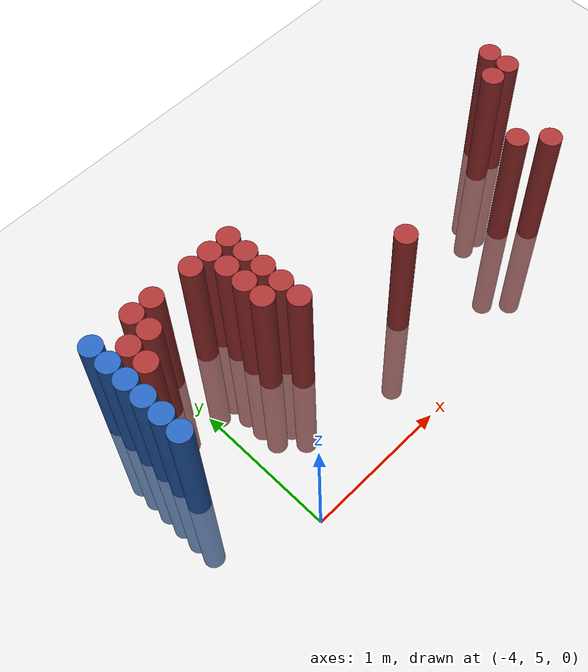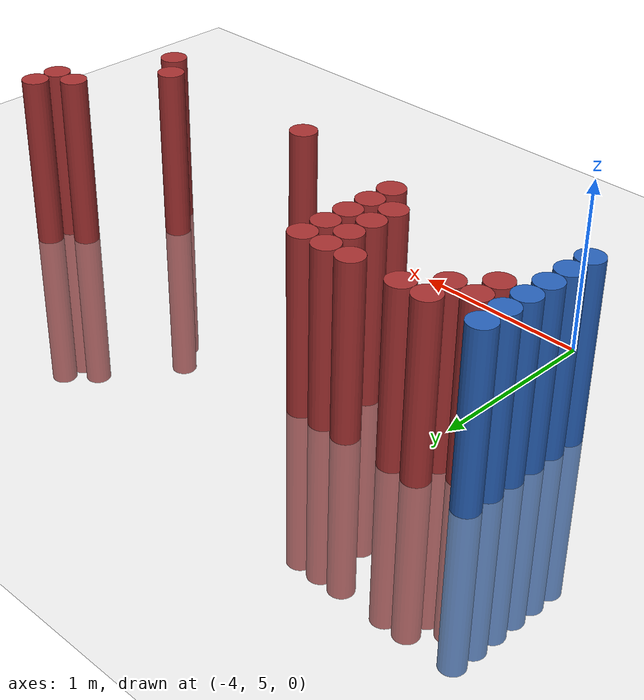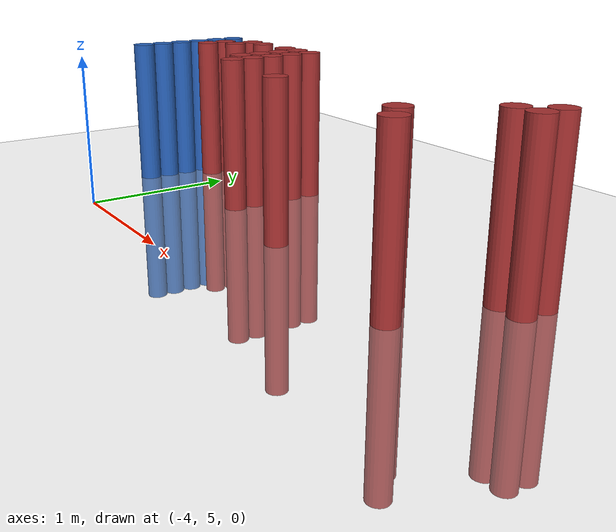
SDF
<sdf version="1.6">
 <world name="default">
  <model name="ground_plane">
   <static>1</static>
   <link name="link">
    <collision name="collision">
     <geometry><plane><normal>0 0 1</normal><size>100 100</size></plane></geometry>
     <surface><friction><ode><mu>100</mu><mu2>50</mu2></ode></friction></surface>
    </collision>
    <visual name="visual">
     <cast_shadows>0</cast_shadows>
     <geometry><plane><normal>0 0 1</normal><size>100 100</size></plane></geometry>
     <material>
      <script><uri>file://media/materials/scripts/gazebo.material</uri><name>Gazebo/Grey</name></script>
     </material>
    </visual>
   </link>
  </model>
  <model name="unit_cylinder_99">
   <static>1</static>
   <pose>-4.425000 5.625000 0.000000 0.000000 0.000000 0.000000</pose>
   <link name="link">
    <inertial>
     <mass>1</mass>
     <inertia><ixx>0.145833</ixx><ixy>0</ixy><ixz>0</ixz><iyy>0.145833</iyy><iyz>0</iyz><izz>0.125</izz></inertia>
    </inertial>
    <collision name="collision">
     <geometry><cylinder><radius>0.075000</radius><length>2</length></cylinder></geometry>
    </collision>
    <visual name="visual">
     <geometry><cylinder><radius>0.075000</radius><length>2</length></cylinder></geometry>
     <material>
      <ambient>0.152000 0.379000 0.720000 1</ambient>
      <diffuse>0.152000 0.379000 0.720000 1</diffuse>
     </material>
     <material>
      <script><name>Gazebo/Grey</name><uri>file://media/materials/scripts/gazebo.material</uri></script>
     </material>
    </visual>
   </link>
  </model>
  <model name="unit_cylinder_100">
   <static>1</static>
   <pose>-4.425000 5.775000 0.000000 0.000000 0.000000 0.000000</pose>
   <link name="link">
    <inertial>
     <mass>1</mass>
     <inertia><ixx>0.145833</ixx><ixy>0</ixy><ixz>0</ixz><iyy>0.145833</iyy><iyz>0</iyz><izz>0.125</izz></inertia>
    </inertial>
    <collision name="collision">
     <geometry><cylinder><radius>0.075000</radius><length>2</length></cylinder></geometry>
    </collision>
    <visual name="visual">
     <geometry><cylinder><radius>0.075000</radius><length>2</length></cylinder></geometry>
     <material>
      <ambient>0.152000 0.379000 0.720000 1</ambient>
      <diffuse>0.152000 0.379000 0.720000 1</diffuse>
     </material>
     <material>
      <script><name>Gazebo/Grey</name><uri>file://media/materials/scripts/gazebo.material</uri></script>
     </material>
    </visual>
   </link>
  </model>
  <model name="unit_cylinder_101">
   <static>1</static>
   <pose>-4.425000 5.925000 0.000000 0.000000 0.000000 0.000000</pose>
   <link name="link">
    <inertial>
     <mass>1</mass>
     <inertia><ixx>0.145833</ixx><ixy>0</ixy><ixz>0</ixz><iyy>0.145833</iyy><iyz>0</iyz><izz>0.125</izz></inertia>
    </inertial>
    <collision name="collision">
     <geometry><cylinder><radius>0.075000</radius><length>2</length></cylinder></geometry>
    </collision>
    <visual name="visual">
     <geometry><cylinder><radius>0.075000</radius><length>2</length></cylinder></geometry>
     <material>
      <ambient>0.152000 0.379000 0.720000 1</ambient>
      <diffuse>0.152000 0.379000 0.720000 1</diffuse>
     </material>
     <material>
      <script><name>Gazebo/Grey</name><uri>file://media/materials/scripts/gazebo.material</uri></script>
     </material>
    </visual>
   </link>
  </model>
  <model name="unit_cylinder_102">
   <static>1</static>
   <pose>-4.425000 6.075000 0.000000 0.000000 0.000000 0.000000</pose>
   <link name="link">
    <inertial>
     <mass>1</mass>
     <inertia><ixx>0.145833</ixx><ixy>0</ixy><ixz>0</ixz><iyy>0.145833</iyy><iyz>0</iyz><izz>0.125</izz></inertia>
    </inertial>
    <collision name="collision">
     <geometry><cylinder><radius>0.075000</radius><length>2</length></cylinder></geometry>
    </collision>
    <visual name="visual">
     <geometry><cylinder><radius>0.075000</radius><length>2</length></cylinder></geometry>
     <material>
      <ambient>0.152000 0.379000 0.720000 1</ambient>
      <diffuse>0.152000 0.379000 0.720000 1</diffuse>
     </material>
     <material>
      <script><name>Gazebo/Grey</name><uri>file://media/materials/scripts/gazebo.material</uri></script>
     </material>
    </visual>
   </link>
  </model>
  <model name="unit_cylinder_103">
   <static>1</static>
   <pose>-4.425000 6.225000 0.000000 0.000000 0.000000 0.000000</pose>
   <link name="link">
    <inertial>
     <mass>1</mass>
     <inertia><ixx>0.145833</ixx><ixy>0</ixy><ixz>0</ixz><iyy>0.145833</iyy><iyz>0</iyz><izz>0.125</izz></inertia>
    </inertial>
    <collision name="collision">
     <geometry><cylinder><radius>0.075000</radius><length>2</length></cylinder></geometry>
    </collision>
    <visual name="visual">
     <geometry><cylinder><radius>0.075000</radius><length>2</length></cylinder></geometry>
     <material>
      <ambient>0.152000 0.379000 0.720000 1</ambient>
      <diffuse>0.152000 0.379000 0.720000 1</diffuse>
     </material>
     <material>
      <script><name>Gazebo/Grey</name><uri>file://media/materials/scripts/gazebo.material</uri></script>
     </material>
    </visual>
   </link>
  </model>
  <model name="unit_cylinder_104">
   <static>1</static>
   <pose>-4.425000 6.375000 0.000000 0.000000 0.000000 0.000000</pose>
   <link name="link">
    <inertial>
     <mass>1</mass>
     <inertia><ixx>0.145833</ixx><ixy>0</ixy><ixz>0</ixz><iyy>0.145833</iyy><iyz>0</iyz><izz>0.125</izz></inertia>
    </inertial>
    <collision name="collision">
     <geometry><cylinder><radius>0.075000</radius><length>2</length></cylinder></geometry>
    </collision>
    <visual name="visual">
     <geometry><cylinder><radius>0.075000</radius><length>2</length></cylinder></geometry>
     <material>
      <ambient>0.152000 0.379000 0.720000 1</ambient>
      <diffuse>0.152000 0.379000 0.720000 1</diffuse>
     </material>
     <material>
      <script><name>Gazebo/Grey</name><uri>file://media/materials/scripts/gazebo.material</uri></script>
     </material>
    </visual>
   </link>
  </model>
  <model name="unit_cylinder_126">
   <static>1</static>
   <pose>-4.275000 6.075000 0.000000 0.000000 0.000000 0.000000</pose>
   <link name="link">
    <inertial>
     <mass>1</mass>
     <inertia><ixx>0.145833</ixx><ixy>0</ixy><ixz>0</ixz><iyy>0.145833</iyy><iyz>0</iyz><izz>0.125</izz></inertia>
    </inertial>
    <collision name="collision">
     <geometry><cylinder><radius>0.075000</radius><length>2</length></cylinder></geometry>
    </collision>
    <visual name="visual">
     <geometry><cylinder><radius>0.075000</radius><length>2</length></cylinder></geometry>
     <material>
      <ambient>0.648000 0.192000 0.192000 1</ambient>
      <diffuse>0.648000 0.192000 0.192000 1</diffuse>
     </material>
     <material>
      <script><name>Gazebo/Grey</name><uri>file://media/materials/scripts/gazebo.material</uri></script>
     </material>
    </visual>
   </link>
  </model>
  <model name="unit_cylinder_127">
   <static>1</static>
   <pose>-4.275000 6.225000 0.000000 0.000000 0.000000 0.000000</pose>
   <link name="link">
    <inertial>
     <mass>1</mass>
     <inertia><ixx>0.145833</ixx><ixy>0</ixy><ixz>0</ixz><iyy>0.145833</iyy><iyz>0</iyz><izz>0.125</izz></inertia>
    </inertial>
    <collision name="collision">
     <geometry><cylinder><radius>0.075000</radius><length>2</length></cylinder></geometry>
    </collision>
    <visual name="visual">
     <geometry><cylinder><radius>0.075000</radius><length>2</length></cylinder></geometry>
     <material>
      <ambient>0.648000 0.192000 0.192000 1</ambient>
      <diffuse>0.648000 0.192000 0.192000 1</diffuse>
     </material>
     <material>
      <script><name>Gazebo/Grey</name><uri>file://media/materials/scripts/gazebo.material</uri></script>
     </material>
    </visual>
   </link>
  </model>
  <model name="unit_cylinder_144">
   <static>1</static>
   <pose>-4.125000 6.225000 0.000000 0.000000 0.000000 0.000000</pose>
   <link name="link">
    <inertial>
     <mass>1</mass>
     <inertia><ixx>0.145833</ixx><ixy>0</ixy><ixz>0</ixz><iyy>0.145833</iyy><iyz>0</iyz><izz>0.125</izz></inertia>
    </inertial>
    <collision name="collision">
     <geometry><cylinder><radius>0.075000</radius><length>2</length></cylinder></geometry>
    </collision>
    <visual name="visual">
     <geometry><cylinder><radius>0.075000</radius><length>2</length></cylinder></geometry>
     <material>
      <ambient>0.648000 0.192000 0.192000 1</ambient>
      <diffuse>0.648000 0.192000 0.192000 1</diffuse>
     </material>
     <material>
      <script><name>Gazebo/Grey</name><uri>file://media/materials/scripts/gazebo.material</uri></script>
     </material>
    </visual>
   </link>
  </model>
  <model name="unit_cylinder_145">
   <static>1</static>
   <pose>-4.125000 6.375000 0.000000 0.000000 0.000000 0.000000</pose>
   <link name="link">
    <inertial>
     <mass>1</mass>
     <inertia><ixx>0.145833</ixx><ixy>0</ixy><ixz>0</ixz><iyy>0.145833</iyy><iyz>0</iyz><izz>0.125</izz></inertia>
    </inertial>
    <collision name="collision">
     <geometry><cylinder><radius>0.075000</radius><length>2</length></cylinder></geometry>
    </collision>
    <visual name="visual">
     <geometry><cylinder><radius>0.075000</radius><length>2</length></cylinder></geometry>
     <material>
      <ambient>0.648000 0.192000 0.192000 1</ambient>
      <diffuse>0.648000 0.192000 0.192000 1</diffuse>
     </material>
     <material>
      <script><name>Gazebo/Grey</name><uri>file://media/materials/scripts/gazebo.material</uri></script>
     </material>
    </visual>
   </link>
  </model>
  <model name="unit_cylinder_153">
   <static>1</static>
   <pose>-3.975000 6.375000 0.000000 0.000000 0.000000 0.000000</pose>
   <link name="link">
    <inertial>
     <mass>1</mass>
     <inertia><ixx>0.145833</ixx><ixy>0</ixy><ixz>0</ixz><iyy>0.145833</iyy><iyz>0</iyz><izz>0.125</izz></inertia>
    </inertial>
    <collision name="collision">
     <geometry><cylinder><radius>0.075000</radius><length>2</length></cylinder></geometry>
    </collision>
    <visual name="visual">
     <geometry><cylinder><radius>0.075000</radius><length>2</length></cylinder></geometry>
     <material>
      <ambient>0.648000 0.192000 0.192000 1</ambient>
      <diffuse>0.648000 0.192000 0.192000 1</diffuse>
     </material>
     <material>
      <script><name>Gazebo/Grey</name><uri>file://media/materials/scripts/gazebo.material</uri></script>
     </material>
    </visual>
   </link>
  </model>
  <model name="unit_cylinder_164">
   <static>1</static>
   <pose>-3.675000 6.375000 0.000000 0.000000 0.000000 0.000000</pose>
   <link name="link">
    <inertial>
     <mass>1</mass>
     <inertia><ixx>0.145833</ixx><ixy>0</ixy><ixz>0</ixz><iyy>0.145833</iyy><iyz>0</iyz><izz>0.125</izz></inertia>
    </inertial>
    <collision name="collision">
     <geometry><cylinder><radius>0.075000</radius><length>2</length></cylinder></geometry>
    </collision>
    <visual name="visual">
     <geometry><cylinder><radius>0.075000</radius><length>2</length></cylinder></geometry>
     <material>
      <ambient>0.648000 0.192000 0.192000 1</ambient>
      <diffuse>0.648000 0.192000 0.192000 1</diffuse>
     </material>
     <material>
      <script><name>Gazebo/Grey</name><uri>file://media/materials/scripts/gazebo.material</uri></script>
     </material>
    </visual>
   </link>
  </model>
  <model name="unit_cylinder_167">
   <static>1</static>
   <pose>-3.525000 5.925000 0.000000 0.000000 0.000000 0.000000</pose>
   <link name="link">
    <inertial>
     <mass>1</mass>
     <inertia><ixx>0.145833</ixx><ixy>0</ixy><ixz>0</ixz><iyy>0.145833</iyy><iyz>0</iyz><izz>0.125</izz></inertia>
    </inertial>
    <collision name="collision">
     <geometry><cylinder><radius>0.075000</radius><length>2</length></cylinder></geometry>
    </collision>
    <visual name="visual">
     <geometry><cylinder><radius>0.075000</radius><length>2</length></cylinder></geometry>
     <material>
      <ambient>0.648000 0.192000 0.192000 1</ambient>
      <diffuse>0.648000 0.192000 0.192000 1</diffuse>
     </material>
     <material>
      <script><name>Gazebo/Grey</name><uri>file://media/materials/scripts/gazebo.material</uri></script>
     </material>
    </visual>
   </link>
  </model>
  <model name="unit_cylinder_168">
   <static>1</static>
   <pose>-3.525000 6.075000 0.000000 0.000000 0.000000 0.000000</pose>
   <link name="link">
    <inertial>
     <mass>1</mass>
     <inertia><ixx>0.145833</ixx><ixy>0</ixy><ixz>0</ixz><iyy>0.145833</iyy><iyz>0</iyz><izz>0.125</izz></inertia>
    </inertial>
    <collision name="collision">
     <geometry><cylinder><radius>0.075000</radius><length>2</length></cylinder></geometry>
    </collision>
    <visual name="visual">
     <geometry><cylinder><radius>0.075000</radius><length>2</length></cylinder></geometry>
     <material>
      <ambient>0.648000 0.192000 0.192000 1</ambient>
      <diffuse>0.648000 0.192000 0.192000 1</diffuse>
     </material>
     <material>
      <script><name>Gazebo/Grey</name><uri>file://media/materials/scripts/gazebo.material</uri></script>
     </material>
    </visual>
   </link>
  </model>
  <model name="unit_cylinder_169">
   <static>1</static>
   <pose>-3.525000 6.225000 0.000000 0.000000 0.000000 0.000000</pose>
   <link name="link">
    <inertial>
     <mass>1</mass>
     <inertia><ixx>0.145833</ixx><ixy>0</ixy><ixz>0</ixz><iyy>0.145833</iyy><iyz>0</iyz><izz>0.125</izz></inertia>
    </inertial>
    <collision name="collision">
     <geometry><cylinder><radius>0.075000</radius><length>2</length></cylinder></geometry>
    </collision>
    <visual name="visual">
     <geometry><cylinder><radius>0.075000</radius><length>2</length></cylinder></geometry>
     <material>
      <ambient>0.648000 0.192000 0.192000 1</ambient>
      <diffuse>0.648000 0.192000 0.192000 1</diffuse>
     </material>
     <material>
      <script><name>Gazebo/Grey</name><uri>file://media/materials/scripts/gazebo.material</uri></script>
     </material>
    </visual>
   </link>
  </model>
  <model name="unit_cylinder_170">
   <static>1</static>
   <pose>-3.525000 6.375000 0.000000 0.000000 0.000000 0.000000</pose>
   <link name="link">
    <inertial>
     <mass>1</mass>
     <inertia><ixx>0.145833</ixx><ixy>0</ixy><ixz>0</ixz><iyy>0.145833</iyy><iyz>0</iyz><izz>0.125</izz></inertia>
    </inertial>
    <collision name="collision">
     <geometry><cylinder><radius>0.075000</radius><length>2</length></cylinder></geometry>
    </collision>
    <visual name="visual">
     <geometry><cylinder><radius>0.075000</radius><length>2</length></cylinder></geometry>
     <material>
      <ambient>0.648000 0.192000 0.192000 1</ambient>
      <diffuse>0.648000 0.192000 0.192000 1</diffuse>
     </material>
     <material>
      <script><name>Gazebo/Grey</name><uri>file://media/materials/scripts/gazebo.material</uri></script>
     </material>
    </visual>
   </link>
  </model>
  <model name="unit_cylinder_172">
   <static>1</static>
   <pose>-3.375000 5.775000 0.000000 0.000000 0.000000 0.000000</pose>
   <link name="link">
    <inertial>
     <mass>1</mass>
     <inertia><ixx>0.145833</ixx><ixy>0</ixy><ixz>0</ixz><iyy>0.145833</iyy><iyz>0</iyz><izz>0.125</izz></inertia>
    </inertial>
    <collision name="collision">
     <geometry><cylinder><radius>0.075000</radius><length>2</length></cylinder></geometry>
    </collision>
    <visual name="visual">
     <geometry><cylinder><radius>0.075000</radius><length>2</length></cylinder></geometry>
     <material>
      <ambient>0.648000 0.192000 0.192000 1</ambient>
      <diffuse>0.648000 0.192000 0.192000 1</diffuse>
     </material>
     <material>
      <script><name>Gazebo/Grey</name><uri>file://media/materials/scripts/gazebo.material</uri></script>
     </material>
    </visual>
   </link>
  </model>
  <model name="unit_cylinder_173">
   <static>1</static>
   <pose>-3.375000 5.925000 0.000000 0.000000 0.000000 0.000000</pose>
   <link name="link">
    <inertial>
     <mass>1</mass>
     <inertia><ixx>0.145833</ixx><ixy>0</ixy><ixz>0</ixz><iyy>0.145833</iyy><iyz>0</iyz><izz>0.125</izz></inertia>
    </inertial>
    <collision name="collision">
     <geometry><cylinder><radius>0.075000</radius><length>2</length></cylinder></geometry>
    </collision>
    <visual name="visual">
     <geometry><cylinder><radius>0.075000</radius><length>2</length></cylinder></geometry>
     <material>
      <ambient>0.648000 0.192000 0.192000 1</ambient>
      <diffuse>0.648000 0.192000 0.192000 1</diffuse>
     </material>
     <material>
      <script><name>Gazebo/Grey</name><uri>file://media/materials/scripts/gazebo.material</uri></script>
     </material>
    </visual>
   </link>
  </model>
  <model name="unit_cylinder_174">
   <static>1</static>
   <pose>-3.375000 6.075000 0.000000 0.000000 0.000000 0.000000</pose>
   <link name="link">
    <inertial>
     <mass>1</mass>
     <inertia><ixx>0.145833</ixx><ixy>0</ixy><ixz>0</ixz><iyy>0.145833</iyy><iyz>0</iyz><izz>0.125</izz></inertia>
    </inertial>
    <collision name="collision">
     <geometry><cylinder><radius>0.075000</radius><length>2</length></cylinder></geometry>
    </collision>
    <visual name="visual">
     <geometry><cylinder><radius>0.075000</radius><length>2</length></cylinder></geometry>
     <material>
      <ambient>0.648000 0.192000 0.192000 1</ambient>
      <diffuse>0.648000 0.192000 0.192000 1</diffuse>
     </material>
     <material>
      <script><name>Gazebo/Grey</name><uri>file://media/materials/scripts/gazebo.material</uri></script>
     </material>
    </visual>
   </link>
  </model>
  <model name="unit_cylinder_175">
   <static>1</static>
   <pose>-3.375000 6.225000 0.000000 0.000000 0.000000 0.000000</pose>
   <link name="link">
    <inertial>
     <mass>1</mass>
     <inertia><ixx>0.145833</ixx><ixy>0</ixy><ixz>0</ixz><iyy>0.145833</iyy><iyz>0</iyz><izz>0.125</izz></inertia>
    </inertial>
    <collision name="collision">
     <geometry><cylinder><radius>0.075000</radius><length>2</length></cylinder></geometry>
    </collision>
    <visual name="visual">
     <geometry><cylinder><radius>0.075000</radius><length>2</length></cylinder></geometry>
     <material>
      <ambient>0.648000 0.192000 0.192000 1</ambient>
      <diffuse>0.648000 0.192000 0.192000 1</diffuse>
     </material>
     <material>
      <script><name>Gazebo/Grey</name><uri>file://media/materials/scripts/gazebo.material</uri></script>
     </material>
    </visual>
   </link>
  </model>
  <model name="unit_cylinder_176">
   <static>1</static>
   <pose>-3.375000 6.375000 0.000000 0.000000 0.000000 0.000000</pose>
   <link name="link">
    <inertial>
     <mass>1</mass>
     <inertia><ixx>0.145833</ixx><ixy>0</ixy><ixz>0</ixz><iyy>0.145833</iyy><iyz>0</iyz><izz>0.125</izz></inertia>
    </inertial>
    <collision name="collision">
     <geometry><cylinder><radius>0.075000</radius><length>2</length></cylinder></geometry>
    </collision>
    <visual name="visual">
     <geometry><cylinder><radius>0.075000</radius><length>2</length></cylinder></geometry>
     <material>
      <ambient>0.648000 0.192000 0.192000 1</ambient>
      <diffuse>0.648000 0.192000 0.192000 1</diffuse>
     </material>
     <material>
      <script><name>Gazebo/Grey</name><uri>file://media/materials/scripts/gazebo.material</uri></script>
     </material>
    </visual>
   </link>
  </model>
  <model name="unit_cylinder_193">
   <static>1</static>
   <pose>-2.625000 5.625000 0.000000 0.000000 0.000000 0.000000</pose>
   <link name="link">
    <inertial>
     <mass>1</mass>
     <inertia><ixx>0.145833</ixx><ixy>0</ixy><ixz>0</ixz><iyy>0.145833</iyy><iyz>0</iyz><izz>0.125</izz></inertia>
    </inertial>
    <collision name="collision">
     <geometry><cylinder><radius>0.075000</radius><length>2</length></cylinder></geometry>
    </collision>
    <visual name="visual">
     <geometry><cylinder><radius>0.075000</radius><length>2</length></cylinder></geometry>
     <material>
      <ambient>0.648000 0.192000 0.192000 1</ambient>
      <diffuse>0.648000 0.192000 0.192000 1</diffuse>
     </material>
     <material>
      <script><name>Gazebo/Grey</name><uri>file://media/materials/scripts/gazebo.material</uri></script>
     </material>
    </visual>
   </link>
  </model>
  <model name="unit_cylinder_219">
   <static>1</static>
   <pose>-1.575000 5.625000 0.000000 0.000000 0.000000 0.000000</pose>
   <link name="link">
    <inertial>
     <mass>1</mass>
     <inertia><ixx>0.145833</ixx><ixy>0</ixy><ixz>0</ixz><iyy>0.145833</iyy><iyz>0</iyz><izz>0.125</izz></inertia>
    </inertial>
    <collision name="collision">
     <geometry><cylinder><radius>0.075000</radius><length>2</length></cylinder></geometry>
    </collision>
    <visual name="visual">
     <geometry><cylinder><radius>0.075000</radius><length>2</length></cylinder></geometry>
     <material>
      <ambient>0.648000 0.192000 0.192000 1</ambient>
      <diffuse>0.648000 0.192000 0.192000 1</diffuse>
     </material>
     <material>
      <script><name>Gazebo/Grey</name><uri>file://media/materials/scripts/gazebo.material</uri></script>
     </material>
    </visual>
   </link>
  </model>
  <model name="unit_cylinder_220">
   <static>1</static>
   <pose>-1.425000 5.475000 0.000000 0.000000 0.000000 0.000000</pose>
   <link name="link">
    <inertial>
     <mass>1</mass>
     <inertia><ixx>0.145833</ixx><ixy>0</ixy><ixz>0</ixz><iyy>0.145833</iyy><iyz>0</iyz><izz>0.125</izz></inertia>
    </inertial>
    <collision name="collision">
     <geometry><cylinder><radius>0.075000</radius><length>2</length></cylinder></geometry>
    </collision>
    <visual name="visual">
     <geometry><cylinder><radius>0.075000</radius><length>2</length></cylinder></geometry>
     <material>
      <ambient>0.648000 0.192000 0.192000 1</ambient>
      <diffuse>0.648000 0.192000 0.192000 1</diffuse>
     </material>
     <material>
      <script><name>Gazebo/Grey</name><uri>file://media/materials/scripts/gazebo.material</uri></script>
     </material>
    </visual>
   </link>
  </model>
  <model name="unit_cylinder_221">
   <static>1</static>
   <pose>-1.275000 6.075000 0.000000 0.000000 0.000000 0.000000</pose>
   <link name="link">
    <inertial>
     <mass>1</mass>
     <inertia><ixx>0.145833</ixx><ixy>0</ixy><ixz>0</ixz><iyy>0.145833</iyy><iyz>0</iyz><izz>0.125</izz></inertia>
    </inertial>
    <collision name="collision">
     <geometry><cylinder><radius>0.075000</radius><length>2</length></cylinder></geometry>
    </collision>
    <visual name="visual">
     <geometry><cylinder><radius>0.075000</radius><length>2</length></cylinder></geometry>
     <material>
      <ambient>0.648000 0.192000 0.192000 1</ambient>
      <diffuse>0.648000 0.192000 0.192000 1</diffuse>
     </material>
     <material>
      <script><name>Gazebo/Grey</name><uri>file://media/materials/scripts/gazebo.material</uri></script>
     </material>
    </visual>
   </link>
  </model>
  <model name="unit_cylinder_222">
   <static>1</static>
   <pose>-1.125000 6.075000 0.000000 0.000000 0.000000 0.000000</pose>
   <link name="link">
    <inertial>
     <mass>1</mass>
     <inertia><ixx>0.145833</ixx><ixy>0</ixy><ixz>0</ixz><iyy>0.145833</iyy><iyz>0</iyz><izz>0.125</izz></inertia>
    </inertial>
    <collision name="collision">
     <geometry><cylinder><radius>0.075000</radius><length>2</length></cylinder></geometry>
    </collision>
    <visual name="visual">
     <geometry><cylinder><radius>0.075000</radius><length>2</length></cylinder></geometry>
     <material>
      <ambient>0.648000 0.192000 0.192000 1</ambient>
      <diffuse>0.648000 0.192000 0.192000 1</diffuse>
     </material>
     <material>
      <script><name>Gazebo/Grey</name><uri>file://media/materials/scripts/gazebo.material</uri></script>
     </material>
    </visual>
   </link>
  </model>
  <model name="unit_cylinder_223">
   <static>1</static>
   <pose>-1.125000 6.225000 0.000000 0.000000 0.000000 0.000000</pose>
   <link name="link">
    <inertial>
     <mass>1</mass>
     <inertia><ixx>0.145833</ixx><ixy>0</ixy><ixz>0</ixz><iyy>0.145833</iyy><iyz>0</iyz><izz>0.125</izz></inertia>
    </inertial>
    <collision name="collision">
     <geometry><cylinder><radius>0.075000</radius><length>2</length></cylinder></geometry>
    </collision>
    <visual name="visual">
     <geometry><cylinder><radius>0.075000</radius><length>2</length></cylinder></geometry>
     <material>
      <ambient>0.648000 0.192000 0.192000 1</ambient>
      <diffuse>0.648000 0.192000 0.192000 1</diffuse>
     </material>
     <material>
      <script><name>Gazebo/Grey</name><uri>file://media/materials/scripts/gazebo.material</uri></script>
     </material>
    </visual>
   </link>
  </model>
 </world>
</sdf>
